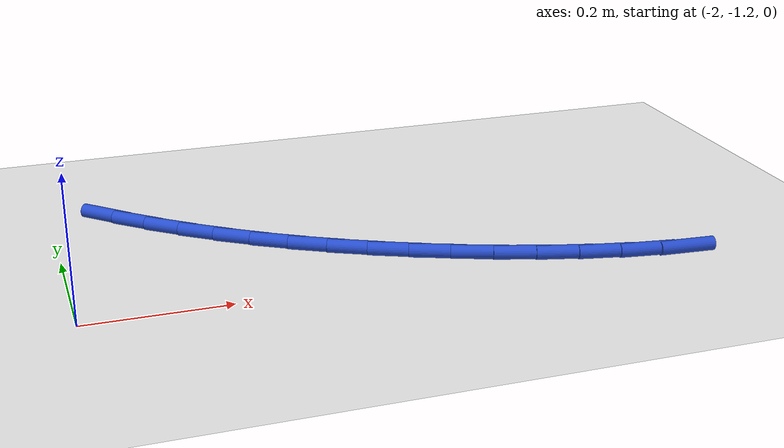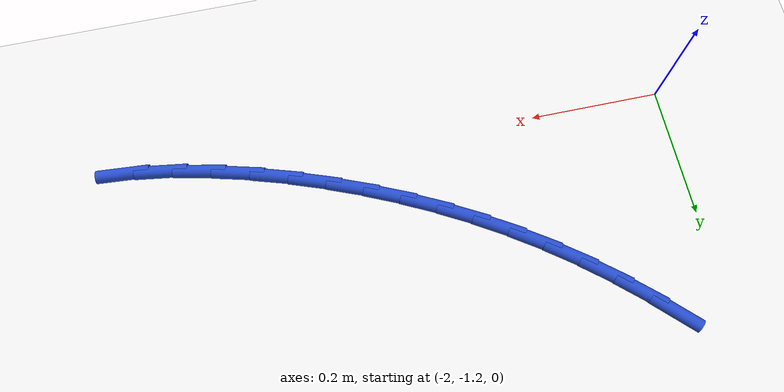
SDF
<sdf version="1.6">
 <world name="default">
  <model name="ground_plane">
   <static>1</static>
   <link name="link">
    <collision name="collision">
     <geometry><plane><normal>0 0 1</normal><size>100 100</size></plane></geometry>
     <surface><friction><ode><mu>100</mu><mu2>50</mu2></ode></friction></surface>
    </collision>
    <visual name="visual">
     <cast_shadows>0</cast_shadows>
     <geometry><plane><normal>0 0 1</normal><size>100 100</size></plane></geometry>
     <material>
      <script><uri>file://media/materials/scripts/gazebo.material</uri><name>Gazebo/WhiteGlow</name></script>
     </material>
    </visual>
   </link>
  </model>
  <model name="line">
   <link name="link_82">
    <pose>-1.9195722777011563 -0.8619349940839603 0.01 0 1.57 -0.7767196452374651</pose>
    <collision name="collision">
     <geometry><cylinder><radius>0.01</radius><length>0.08</length></cylinder></geometry>
    </collision>
    <visual name="visual">
     <material>
      <script><name>Gazebo/Blue</name><uri>file://media/materials/scripts/gazebo.material</uri></script>
     </material>
     <geometry><cylinder><radius>0.01</radius><length>0.08</length></cylinder></geometry>
    </visual>
   </link>
   <link name="link_83">
    <pose>-1.8795047390866824 -0.901313045393497 0.01 0 1.57 -0.7294264990052061</pose>
    <collision name="collision">
     <geometry><cylinder><radius>0.01</radius><length>0.08</length></cylinder></geometry>
    </collision>
    <visual name="visual">
     <material>
      <script><name>Gazebo/Blue</name><uri>file://media/materials/scripts/gazebo.material</uri></script>
     </material>
     <geometry><cylinder><radius>0.01</radius><length>0.08</length></cylinder></geometry>
    </visual>
   </link>
   <link name="link_84">
    <pose>-1.8378796717751356 -0.9385210792584753 0.01 0 1.57 -0.6823985830261089</pose>
    <collision name="collision">
     <geometry><cylinder><radius>0.01</radius><length>0.08</length></cylinder></geometry>
    </collision>
    <visual name="visual">
     <material>
      <script><name>Gazebo/Blue</name><uri>file://media/materials/scripts/gazebo.material</uri></script>
     </material>
     <geometry><cylinder><radius>0.01</radius><length>0.08</length></cylinder></geometry>
    </visual>
   </link>
   <link name="link_85">
    <pose>-1.7947076069965493 -0.9736042614352235 0.01 0 1.57 -0.6359012946652481</pose>
    <collision name="collision">
     <geometry><cylinder><radius>0.01</radius><length>0.08</length></cylinder></geometry>
    </collision>
    <visual name="visual">
     <material>
      <script><name>Gazebo/Blue</name><uri>file://media/materials/scripts/gazebo.material</uri></script>
     </material>
     <geometry><cylinder><radius>0.01</radius><length>0.08</length></cylinder></geometry>
    </visual>
   </link>
   <link name="link_86">
    <pose>-1.7499990759809572 -1.006607757680069 0.01 0 1.57 -0.5901855806182713</pose>
    <collision name="collision">
     <geometry><cylinder><radius>0.01</radius><length>0.08</length></cylinder></geometry>
    </collision>
    <visual name="visual">
     <material>
      <script><name>Gazebo/Blue</name><uri>file://media/materials/scripts/gazebo.material</uri></script>
     </material>
     <geometry><cylinder><radius>0.01</radius><length>0.08</length></cylinder></geometry>
    </visual>
   </link>
   <link name="link_87">
    <pose>-1.7037646099583923 -1.0375767337493376 0.01 0 1.57 -0.545481042884719</pose>
    <collision name="collision">
     <geometry><cylinder><radius>0.01</radius><length>0.08</length></cylinder></geometry>
    </collision>
    <visual name="visual">
     <material>
      <script><name>Gazebo/Blue</name><uri>file://media/materials/scripts/gazebo.material</uri></script>
     </material>
     <geometry><cylinder><radius>0.01</radius><length>0.08</length></cylinder></geometry>
    </visual>
   </link>
   <link name="link_88">
    <pose>-1.6560147401588887 -1.0665563553993576 0.01 0 1.57 -0.5019905645918317</pose>
    <collision name="collision">
     <geometry><cylinder><radius>0.01</radius><length>0.08</length></cylinder></geometry>
    </collision>
    <visual name="visual">
     <material>
      <script><name>Gazebo/Blue</name><uri>file://media/materials/scripts/gazebo.material</uri></script>
     </material>
     <geometry><cylinder><radius>0.01</radius><length>0.08</length></cylinder></geometry>
    </visual>
   </link>
   <link name="link_89">
    <pose>-1.6067599978124796 -1.0935917883864554 0.01 0 1.57 -0.4598866989355526</pose>
    <collision name="collision">
     <geometry><cylinder><radius>0.01</radius><length>0.08</length></cylinder></geometry>
    </collision>
    <visual name="visual">
     <material>
      <script><name>Gazebo/Blue</name><uri>file://media/materials/scripts/gazebo.material</uri></script>
     </material>
     <geometry><cylinder><radius>0.01</radius><length>0.08</length></cylinder></geometry>
    </visual>
   </link>
   <link name="link_90">
    <pose>-1.5560109141491985 -1.1187281984669581 0.01 0 1.57 -0.41930986336880216</pose>
    <collision name="collision">
     <geometry><cylinder><radius>0.01</radius><length>0.08</length></cylinder></geometry>
    </collision>
    <visual name="visual">
     <material>
      <script><name>Gazebo/Blue</name><uri>file://media/materials/scripts/gazebo.material</uri></script>
     </material>
     <geometry><cylinder><radius>0.01</radius><length>0.08</length></cylinder></geometry>
    </visual>
   </link>
   <link name="link_91">
    <pose>-1.5037780203990785 -1.1420107513971942 0.01 0 1.57 -0.38034865574456156</pose>
    <collision name="collision">
     <geometry><cylinder><radius>0.01</radius><length>0.08</length></cylinder></geometry>
    </collision>
    <visual name="visual">
     <material>
      <script><name>Gazebo/Blue</name><uri>file://media/materials/scripts/gazebo.material</uri></script>
     </material>
     <geometry><cylinder><radius>0.01</radius><length>0.08</length></cylinder></geometry>
    </visual>
   </link>
   <link name="link_92">
    <pose>-1.4500732811865178 -1.1634828220554694 0.01 0 1.57 -0.34132802284471025</pose>
    <collision name="collision">
     <geometry><cylinder><radius>0.01</radius><length>0.08</length></cylinder></geometry>
    </collision>
    <visual name="visual">
     <material>
      <script><name>Gazebo/Blue</name><uri>file://media/materials/scripts/gazebo.material</uri></script>
     </material>
     <geometry><cylinder><radius>0.01</radius><length>0.08</length></cylinder></geometry>
    </visual>
   </link>
   <link name="link_93">
    <pose>-1.3950302686216562 -1.1830358493429698 0.01 0 1.57 -0.29879848415689136</pose>
    <collision name="collision">
     <geometry><cylinder><radius>0.01</radius><length>0.08</length></cylinder></geometry>
    </collision>
    <visual name="visual">
     <material>
      <script><name>Gazebo/Blue</name><uri>file://media/materials/scripts/gazebo.material</uri></script>
     </material>
     <geometry><cylinder><radius>0.01</radius><length>0.08</length></cylinder></geometry>
    </visual>
   </link>
   <link name="link_94">
    <pose>-1.3389949968676493 -1.2002958477858119 0.01 0 1.57 -0.2516322035109145</pose>
    <collision name="collision">
     <geometry><cylinder><radius>0.01</radius><length>0.08</length></cylinder></geometry>
    </collision>
    <visual name="visual">
     <material>
      <script><name>Gazebo/Blue</name><uri>file://media/materials/scripts/gazebo.material</uri></script>
     </material>
     <geometry><cylinder><radius>0.01</radius><length>0.08</length></cylinder></geometry>
    </visual>
   </link>
   <link name="link_95">
    <pose>-1.2823348722831265 -1.2148621045741945 0.01 0 1.57 -0.19888661148663173</pose>
    <collision name="collision">
     <geometry><cylinder><radius>0.01</radius><length>0.08</length></cylinder></geometry>
    </collision>
    <visual name="visual">
     <material>
      <script><name>Gazebo/Blue</name><uri>file://media/materials/scripts/gazebo.material</uri></script>
     </material>
     <geometry><cylinder><radius>0.01</radius><length>0.08</length></cylinder></geometry>
    </visual>
   </link>
   <link name="link_96">
    <pose>-1.2254173012267147 -1.2263339068983152 0.01 0 1.57 -0.13950284270825222</pose>
    <collision name="collision">
     <geometry><cylinder><radius>0.01</radius><length>0.08</length></cylinder></geometry>
    </collision>
    <visual name="visual">
     <material>
      <script><name>Gazebo/Blue</name><uri>file://media/materials/scripts/gazebo.material</uri></script>
     </material>
     <geometry><cylinder><radius>0.01</radius><length>0.08</length></cylinder></geometry>
    </visual>
   </link>
   <link name="link_97">
    <pose>-1.1686096900570422 -1.234310541948373 0.01 0 1.57 -0.07231707763546008</pose>
    <collision name="collision">
     <geometry><cylinder><radius>0.01</radius><length>0.08</length></cylinder></geometry>
    </collision>
    <visual name="visual">
     <material>
      <script><name>Gazebo/Blue</name><uri>file://media/materials/scripts/gazebo.material</uri></script>
     </material>
     <geometry><cylinder><radius>0.01</radius><length>0.08</length></cylinder></geometry>
    </visual>
   </link>
  </model>
 </world>
</sdf>
